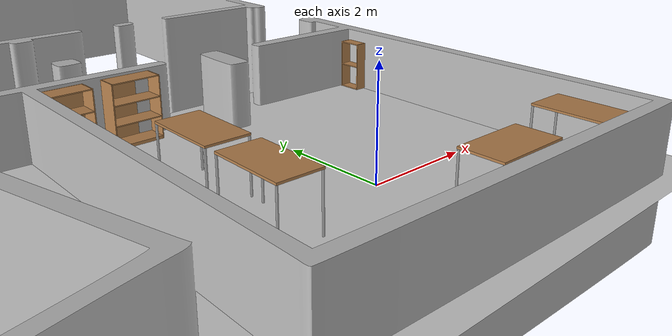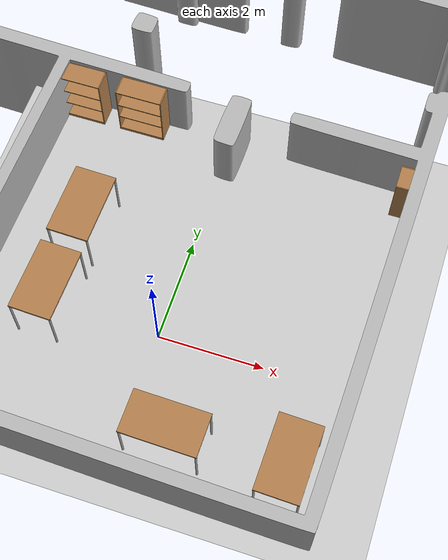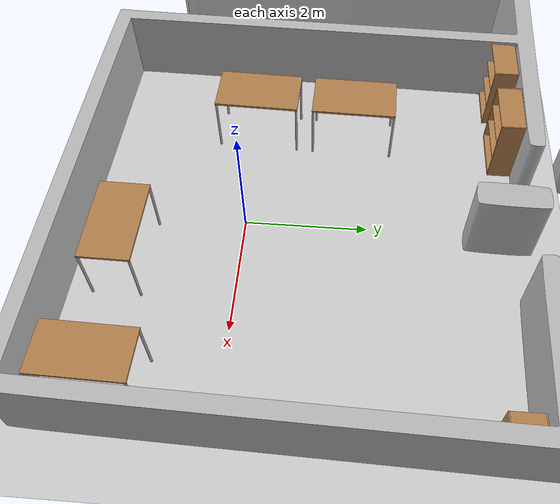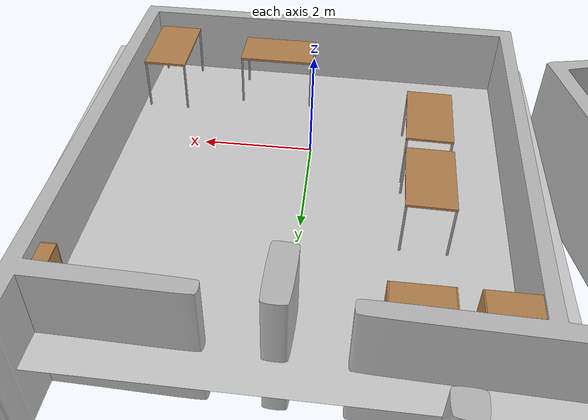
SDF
<sdf version="1.6">
 <world name="default">
  <light name="sun" type="directional">
   <pose>0 0 10 0 -0 0</pose>
   <diffuse>0.8 0.8 0.8 1</diffuse>
   <specular>0.1 0.1 0.1 1</specular>
   <attenuation>
    <range>1000</range>
    <constant>0.9</constant>
    <linear>0.01</linear>
    <quadratic>0.001</quadratic>
   </attenuation>
   <direction>-0.5 0.5 -1</direction>
  </light>
  <model name="ground_plane">
   <static>1</static>
   <link name="link">
    <collision name="collision">
     <geometry><plane><normal>0 0 1</normal><size>100 100</size></plane></geometry>
     <surface><friction><ode><mu>100</mu><mu2>50</mu2></ode></friction></surface>
    </collision>
    <visual name="visual">
     <cast_shadows>0</cast_shadows>
     <geometry><plane><normal>0 0 1</normal><size>100 100</size></plane></geometry>
     <material>
      <script><uri>file://media/materials/scripts/gazebo.material</uri><name>Gazebo/Grey</name></script>
     </material>
    </visual>
   </link>
  </model>
  <model name="brsu_ground_floor">
   <pose>-85 -30 0 0 -0 0</pose>
   <static>1</static>
   <link name="body">
    <visual name="visual">
     <geometry><mesh><uri>file://brsu_ground_floor.stl</uri><scale>1 1 1</scale></mesh></geometry>
    </visual>
    <collision name="collision">
     <geometry><mesh><uri>file://brsu_ground_floor.stl</uri><scale>1 1 1</scale></mesh></geometry>
    </collision>
   </link>
  </model>
  <gravity>0 0 -9.8</gravity>
  <magnetic_field>6e-06 2.3e-05 -4.2e-05</magnetic_field>
  <atmosphere type="adiabatic"/>
  <physics name="default_physics" default="0" type="ode">
   <max_step_size>0.001</max_step_size>
   <real_time_factor>1</real_time_factor>
   <real_time_update_rate>1000</real_time_update_rate>
  </physics>
  <scene><ambient>0.4 0.4 0.4 1</ambient><background>0.7 0.7 0.7 1</background><shadows>1</shadows></scene>
  <spherical_coordinates>
   <surface_model>EARTH_WGS84</surface_model>
   <latitude_deg>0</latitude_deg>
   <longitude_deg>0</longitude_deg>
   <elevation>0</elevation>
   <heading_deg>0</heading_deg>
  </spherical_coordinates>
  <model name="bookshelf">
   <static>1</static>
   <link name="link">
    <inertial><mass>1</mass></inertial>
    <collision name="back">
     <pose>0 0.005 0.6 0 -0 0</pose>
     <geometry><box><size>0.9 0.01 1.2</size></box></geometry>
    </collision>
    <visual name="visual1">
     <pose>0 0.005 0.6 0 -0 0</pose>
     <geometry><box><size>0.9 0.01 1.2</size></box></geometry>
     <material>
      <script><uri>file://media/materials/scripts/gazebo.material</uri><name>Gazebo/Wood</name></script>
     </material>
    </visual>
    <collision name="left_side">
     <pose>0.45 -0.195 0.6 0 -0 0</pose>
     <geometry><box><size>0.02 0.4 1.2</size></box></geometry>
    </collision>
    <visual name="visual2">
     <pose>0.45 -0.195 0.6 0 -0 0</pose>
     <geometry><box><size>0.02 0.4 1.2</size></box></geometry>
     <material>
      <script><uri>file://media/materials/scripts/gazebo.material</uri><name>Gazebo/Wood</name></script>
     </material>
    </visual>
    <collision name="right_side">
     <pose>-0.45 -0.195 0.6 0 -0 0</pose>
     <geometry><box><size>0.02 0.4 1.2</size></box></geometry>
    </collision>
    <visual name="visual3">
     <pose>-0.45 -0.195 0.6 0 -0 0</pose>
     <geometry><box><size>0.02 0.4 1.2</size></box></geometry>
     <material>
      <script><uri>file://media/materials/scripts/gazebo.material</uri><name>Gazebo/Wood</name></script>
     </material>
    </visual>
    <collision name="bottom">
     <pose>0 -0.195 0.03 0 -0 0</pose>
     <geometry><box><size>0.88 0.4 0.06</size></box></geometry>
    </collision>
    <visual name="visual4">
     <pose>0 -0.195 0.03 0 -0 0</pose>
     <geometry><box><size>0.88 0.4 0.06</size></box></geometry>
     <material>
      <script><uri>file://media/materials/scripts/gazebo.material</uri><name>Gazebo/Wood</name></script>
     </material>
    </visual>
    <collision name="top">
     <pose>0 -0.195 1.19 0 -0 0</pose>
     <geometry><box><size>0.88 0.4 0.02</size></box></geometry>
    </collision>
    <visual name="visual5">
     <pose>0 -0.195 1.19 0 -0 0</pose>
     <geometry><box><size>0.88 0.4 0.02</size></box></geometry>
     <material>
      <script><uri>file://media/materials/scripts/gazebo.material</uri><name>Gazebo/Wood</name></script>
     </material>
    </visual>
    <collision name="low_shelf">
     <pose>0 -0.195 0.43 0 -0 0</pose>
     <geometry><box><size>0.88 0.4 0.02</size></box></geometry>
    </collision>
    <visual name="visual6">
     <pose>0 -0.195 0.43 0 -0 0</pose>
     <geometry><box><size>0.88 0.4 0.02</size></box></geometry>
     <material>
      <script><uri>file://media/materials/scripts/gazebo.material</uri><name>Gazebo/Wood</name></script>
     </material>
    </visual>
    <collision name="high_shelf">
     <pose>0 -0.195 0.8 0 -0 0</pose>
     <geometry><box><size>0.88 0.4 0.02</size></box></geometry>
    </collision>
    <visual name="visual7">
     <pose>0 -0.195 0.8 0 -0 0</pose>
     <geometry><box><size>0.88 0.4 0.02</size></box></geometry>
     <material>
      <script><uri>file://media/materials/scripts/gazebo.material</uri><name>Gazebo/Wood</name></script>
     </material>
    </visual>
   </link>
   <pose>-3.04076 4.44791 0 0 -0 0</pose>
  </model>
  <model name="table">
   <static>0</static>
   <link name="link">
    <collision name="surface">
     <pose>0 0 1 0 -0 0</pose>
     <geometry><box><size>1.5 0.8 0.03</size></box></geometry>
     <surface><friction><ode><mu>0.6</mu><mu2>0.6</mu2></ode></friction></surface>
    </collision>
    <visual name="visual1">
     <pose>0 0 1 0 -0 0</pose>
     <geometry><box><size>1.4 0.8 0.04</size></box></geometry>
     <material>
      <script><uri>file://media/materials/scripts/gazebo.material</uri><name>Gazebo/Wood</name></script>
     </material>
    </visual>
    <collision name="front_left_leg">
     <pose>0.68 0.38 0.5 0 -0 0</pose>
     <geometry><cylinder><radius>0.02</radius><length>1</length></cylinder></geometry>
    </collision>
    <visual name="front_left_leg">
     <pose>0.68 0.38 0.5 0 -0 0</pose>
     <geometry><cylinder><radius>0.02</radius><length>1</length></cylinder></geometry>
     <material>
      <script><uri>file://media/materials/scripts/gazebo.material</uri><name>Gazebo/Grey</name></script>
     </material>
    </visual>
    <collision name="front_right_leg">
     <pose>0.68 -0.38 0.5 0 -0 0</pose>
     <geometry><cylinder><radius>0.02</radius><length>1</length></cylinder></geometry>
    </collision>
    <visual name="front_right_leg">
     <pose>0.68 -0.38 0.5 0 -0 0</pose>
     <geometry><cylinder><radius>0.02</radius><length>1</length></cylinder></geometry>
     <material>
      <script><uri>file://media/materials/scripts/gazebo.material</uri><name>Gazebo/Grey</name></script>
     </material>
    </visual>
    <collision name="back_right_leg">
     <pose>-0.68 -0.38 0.5 0 -0 0</pose>
     <geometry><cylinder><radius>0.02</radius><length>1</length></cylinder></geometry>
    </collision>
    <visual name="back_right_leg">
     <pose>-0.68 -0.38 0.5 0 -0 0</pose>
     <geometry><cylinder><radius>0.02</radius><length>1</length></cylinder></geometry>
     <material>
      <script><uri>file://media/materials/scripts/gazebo.material</uri><name>Gazebo/Grey</name></script>
     </material>
    </visual>
    <collision name="back_left_leg">
     <pose>-0.68 0.38 0.5 0 -0 0</pose>
     <geometry><cylinder><radius>0.02</radius><length>1</length></cylinder></geometry>
    </collision>
    <visual name="back_left_leg">
     <pose>-0.68 0.38 0.5 0 -0 0</pose>
     <geometry><cylinder><radius>0.02</radius><length>1</length></cylinder></geometry>
     <material>
      <script><uri>file://media/materials/scripts/gazebo.material</uri><name>Gazebo/Grey</name></script>
     </material>
    </visual>
    <inertial>
     <inertia><ixx>1</ixx><ixy>0</ixy><ixz>0</ixz><iyy>1</iyy><iyz>0</iyz><izz>1</izz></inertia>
     <mass>1</mass>
    </inertial>
   </link>
   <pose>0.811621 -1.80686 -9e-06 -0 -1e-06 -0.015834</pose>
  </model>
  <model name="table_0">
   <static>0</static>
   <link name="link">
    <collision name="surface">
     <pose>0 0 1 0 -0 0</pose>
     <geometry><box><size>1.5 0.8 0.03</size></box></geometry>
     <surface><friction><ode><mu>0.6</mu><mu2>0.6</mu2></ode></friction></surface>
    </collision>
    <visual name="visual1">
     <pose>0 0 1 0 -0 0</pose>
     <geometry><box><size>1.4 0.8 0.04</size></box></geometry>
     <material>
      <script><uri>file://media/materials/scripts/gazebo.material</uri><name>Gazebo/Wood</name></script>
     </material>
    </visual>
    <collision name="front_left_leg">
     <pose>0.68 0.38 0.5 0 -0 0</pose>
     <geometry><cylinder><radius>0.02</radius><length>1</length></cylinder></geometry>
    </collision>
    <visual name="front_left_leg">
     <pose>0.68 0.38 0.5 0 -0 0</pose>
     <geometry><cylinder><radius>0.02</radius><length>1</length></cylinder></geometry>
     <material>
      <script><uri>file://media/materials/scripts/gazebo.material</uri><name>Gazebo/Grey</name></script>
     </material>
    </visual>
    <collision name="front_right_leg">
     <pose>0.68 -0.38 0.5 0 -0 0</pose>
     <geometry><cylinder><radius>0.02</radius><length>1</length></cylinder></geometry>
    </collision>
    <visual name="front_right_leg">
     <pose>0.68 -0.38 0.5 0 -0 0</pose>
     <geometry><cylinder><radius>0.02</radius><length>1</length></cylinder></geometry>
     <material>
      <script><uri>file://media/materials/scripts/gazebo.material</uri><name>Gazebo/Grey</name></script>
     </material>
    </visual>
    <collision name="back_right_leg">
     <pose>-0.68 -0.38 0.5 0 -0 0</pose>
     <geometry><cylinder><radius>0.02</radius><length>1</length></cylinder></geometry>
    </collision>
    <visual name="back_right_leg">
     <pose>-0.68 -0.38 0.5 0 -0 0</pose>
     <geometry><cylinder><radius>0.02</radius><length>1</length></cylinder></geometry>
     <material>
      <script><uri>file://media/materials/scripts/gazebo.material</uri><name>Gazebo/Grey</name></script>
     </material>
    </visual>
    <collision name="back_left_leg">
     <pose>-0.68 0.38 0.5 0 -0 0</pose>
     <geometry><cylinder><radius>0.02</radius><length>1</length></cylinder></geometry>
    </collision>
    <visual name="back_left_leg">
     <pose>-0.68 0.38 0.5 0 -0 0</pose>
     <geometry><cylinder><radius>0.02</radius><length>1</length></cylinder></geometry>
     <material>
      <script><uri>file://media/materials/scripts/gazebo.material</uri><name>Gazebo/Grey</name></script>
     </material>
    </visual>
    <inertial>
     <inertia><ixx>1</ixx><ixy>0</ixy><ixz>0</ixz><iyy>1</iyy><iyz>0</iyz><izz>1</izz></inertia>
     <mass>1</mass>
    </inertial>
   </link>
   <pose>2.94137 -1.74418 -8e-06 0 0 -1.59473</pose>
  </model>
  <model name="bookshelf_0">
   <static>1</static>
   <link name="link">
    <inertial><mass>1</mass></inertial>
    <collision name="back">
     <pose>0 0.005 0.6 0 -0 0</pose>
     <geometry><box><size>0.9 0.01 1.2</size></box></geometry>
    </collision>
    <visual name="visual1">
     <pose>0 0.005 0.6 0 -0 0</pose>
     <geometry><box><size>0.9 0.01 1.2</size></box></geometry>
     <material>
      <script><uri>file://media/materials/scripts/gazebo.material</uri><name>Gazebo/Wood</name></script>
     </material>
    </visual>
    <collision name="left_side">
     <pose>0.45 -0.195 0.6 0 -0 0</pose>
     <geometry><box><size>0.02 0.4 1.2</size></box></geometry>
    </collision>
    <visual name="visual2">
     <pose>0.45 -0.195 0.6 0 -0 0</pose>
     <geometry><box><size>0.02 0.4 1.2</size></box></geometry>
     <material>
      <script><uri>file://media/materials/scripts/gazebo.material</uri><name>Gazebo/Wood</name></script>
     </material>
    </visual>
    <collision name="right_side">
     <pose>-0.45 -0.195 0.6 0 -0 0</pose>
     <geometry><box><size>0.02 0.4 1.2</size></box></geometry>
    </collision>
    <visual name="visual3">
     <pose>-0.45 -0.195 0.6 0 -0 0</pose>
     <geometry><box><size>0.02 0.4 1.2</size></box></geometry>
     <material>
      <script><uri>file://media/materials/scripts/gazebo.material</uri><name>Gazebo/Wood</name></script>
     </material>
    </visual>
    <collision name="bottom">
     <pose>0 -0.195 0.03 0 -0 0</pose>
     <geometry><box><size>0.88 0.4 0.06</size></box></geometry>
    </collision>
    <visual name="visual4">
     <pose>0 -0.195 0.03 0 -0 0</pose>
     <geometry><box><size>0.88 0.4 0.06</size></box></geometry>
     <material>
      <script><uri>file://media/materials/scripts/gazebo.material</uri><name>Gazebo/Wood</name></script>
     </material>
    </visual>
    <collision name="top">
     <pose>0 -0.195 1.19 0 -0 0</pose>
     <geometry><box><size>0.88 0.4 0.02</size></box></geometry>
    </collision>
    <visual name="visual5">
     <pose>0 -0.195 1.19 0 -0 0</pose>
     <geometry><box><size>0.88 0.4 0.02</size></box></geometry>
     <material>
      <script><uri>file://media/materials/scripts/gazebo.material</uri><name>Gazebo/Wood</name></script>
     </material>
    </visual>
    <collision name="low_shelf">
     <pose>0 -0.195 0.43 0 -0 0</pose>
     <geometry><box><size>0.88 0.4 0.02</size></box></geometry>
    </collision>
    <visual name="visual6">
     <pose>0 -0.195 0.43 0 -0 0</pose>
     <geometry><box><size>0.88 0.4 0.02</size></box></geometry>
     <material>
      <script><uri>file://media/materials/scripts/gazebo.material</uri><name>Gazebo/Wood</name></script>
     </material>
    </visual>
    <collision name="high_shelf">
     <pose>0 -0.195 0.8 0 -0 0</pose>
     <geometry><box><size>0.88 0.4 0.02</size></box></geometry>
    </collision>
    <visual name="visual7">
     <pose>0 -0.195 0.8 0 -0 0</pose>
     <geometry><box><size>0.88 0.4 0.02</size></box></geometry>
     <material>
      <script><uri>file://media/materials/scripts/gazebo.material</uri><name>Gazebo/Wood</name></script>
     </material>
    </visual>
   </link>
   <pose>-1.79311 4.45555 0 0 -0 0</pose>
  </model>
  <model name="cabinet">
   <static>1</static>
   <link name="cabinet_bottom_plate">
    <inertial>
     <pose>0 0 -1 0 -0 0</pose>
     <inertia><ixx>2.05</ixx><ixy>0</ixy><ixz>0</ixz><iyy>2.05</iyy><iyz>0</iyz><izz>2.05</izz></inertia>
     <mass>25</mass>
    </inertial>
    <collision name="cabinet_bottom_plate_geom">
     <pose>0 0 0.01 0 -0 0</pose>
     <geometry><box><size>0.45 0.45 0.02</size></box></geometry>
    </collision>
    <visual name="cabinet_bottom_plate_geom_visual">
     <pose>0 0 0.01 0 -0 0</pose>
     <geometry><box><size>0.45 0.45 0.02</size></box></geometry>
     <material>
      <script><uri>file://media/materials/scripts/gazebo.material</uri><name>Gazebo/Wood</name></script>
     </material>
    </visual>
    <collision name="cabinet_bottom_plate_geom_cabinet_back_plate">
     <pose>0.235 0 0.51 0 -0 0</pose>
     <geometry><box><size>0.02 0.45 1.02</size></box></geometry>
    </collision>
    <visual name="cabinet_bottom_plate_geom_cabinet_back_plate_visual">
     <pose>0.235 0 0.51 0 -0 0</pose>
     <geometry><box><size>0.02 0.45 1.02</size></box></geometry>
     <material>
      <script><uri>file://media/materials/scripts/gazebo.material</uri><name>Gazebo/Wood</name></script>
     </material>
    </visual>
    <collision name="cabinet_bottom_plate_geom_cabinet_left_plate">
     <pose>0 0.235 0.51 0 -0 0</pose>
     <geometry><box><size>0.45 0.02 1.02</size></box></geometry>
    </collision>
    <visual name="cabinet_bottom_plate_geom_cabinet_left_plate_visual">
     <pose>0 0.235 0.51 0 -0 0</pose>
     <geometry><box><size>0.45 0.02 1.02</size></box></geometry>
     <material>
      <script><uri>file://media/materials/scripts/gazebo.material</uri><name>Gazebo/Wood</name></script>
     </material>
    </visual>
    <collision name="cabinet_bottom_plate_geom_cabinet_middle_plate">
     <pose>0 0 0.51 0 -0 0</pose>
     <geometry><box><size>0.45 0.45 0.02</size></box></geometry>
    </collision>
    <visual name="cabinet_bottom_plate_geom_cabinet_middle_plate_visual">
     <pose>0 0 0.51 0 -0 0</pose>
     <geometry><box><size>0.45 0.45 0.02</size></box></geometry>
     <material>
      <script><uri>file://media/materials/scripts/gazebo.material</uri><name>Gazebo/Wood</name></script>
     </material>
    </visual>
    <collision name="cabinet_bottom_plate_geom_cabinet_right_plate">
     <pose>0 -0.235 0.51 0 -0 0</pose>
     <geometry><box><size>0.45 0.02 1.02</size></box></geometry>
    </collision>
    <visual name="cabinet_bottom_plate_geom_cabinet_right_plate_visual">
     <pose>0 -0.235 0.51 0 -0 0</pose>
     <geometry><box><size>0.45 0.02 1.02</size></box></geometry>
     <material>
      <script><uri>file://media/materials/scripts/gazebo.material</uri><name>Gazebo/Wood</name></script>
     </material>
    </visual>
    <collision name="cabinet_bottom_plate_geom_cabinet_top_plate">
     <pose>0 0 1.01 0 -0 0</pose>
     <geometry><box><size>0.45 0.45 0.02</size></box></geometry>
    </collision>
    <visual name="cabinet_bottom_plate_geom_cabinet_top_plate_visual">
     <pose>0 0 1.01 0 -0 0</pose>
     <geometry><box><size>0.45 0.45 0.02</size></box></geometry>
     <material>
      <script><uri>file://media/materials/scripts/gazebo.material</uri><name>Gazebo/Wood</name></script>
     </material>
    </visual>
   </link>
   <pose>3.58417 4.03156 0 0 -0 0</pose>
  </model>
  <model name="table_clone">
   <static>0</static>
   <link name="link">
    <collision name="surface">
     <pose>0 0 1 0 -0 0</pose>
     <geometry><box><size>1.5 0.8 0.03</size></box></geometry>
     <surface><friction><ode><mu>0.6</mu><mu2>0.6</mu2></ode></friction></surface>
    </collision>
    <visual name="visual1">
     <pose>0 0 1 0 -0 0</pose>
     <geometry><box><size>1.4 0.8 0.04</size></box></geometry>
     <material>
      <script><uri>file://media/materials/scripts/gazebo.material</uri><name>Gazebo/Wood</name></script>
     </material>
    </visual>
    <collision name="front_left_leg">
     <pose>0.68 0.38 0.5 0 -0 0</pose>
     <geometry><cylinder><radius>0.02</radius><length>1</length></cylinder></geometry>
    </collision>
    <visual name="front_left_leg">
     <pose>0.68 0.38 0.5 0 -0 0</pose>
     <geometry><cylinder><radius>0.02</radius><length>1</length></cylinder></geometry>
     <material>
      <script><uri>file://media/materials/scripts/gazebo.material</uri><name>Gazebo/Grey</name></script>
     </material>
    </visual>
    <collision name="front_right_leg">
     <pose>0.68 -0.38 0.5 0 -0 0</pose>
     <geometry><cylinder><radius>0.02</radius><length>1</length></cylinder></geometry>
    </collision>
    <visual name="front_right_leg">
     <pose>0.68 -0.38 0.5 0 -0 0</pose>
     <geometry><cylinder><radius>0.02</radius><length>1</length></cylinder></geometry>
     <material>
      <script><uri>file://media/materials/scripts/gazebo.material</uri><name>Gazebo/Grey</name></script>
     </material>
    </visual>
    <collision name="back_right_leg">
     <pose>-0.68 -0.38 0.5 0 -0 0</pose>
     <geometry><cylinder><radius>0.02</radius><length>1</length></cylinder></geometry>
    </collision>
    <visual name="back_right_leg">
     <pose>-0.68 -0.38 0.5 0 -0 0</pose>
     <geometry><cylinder><radius>0.02</radius><length>1</length></cylinder></geometry>
     <material>
      <script><uri>file://media/materials/scripts/gazebo.material</uri><name>Gazebo/Grey</name></script>
     </material>
    </visual>
    <collision name="back_left_leg">
     <pose>-0.68 0.38 0.5 0 -0 0</pose>
     <geometry><cylinder><radius>0.02</radius><length>1</length></cylinder></geometry>
    </collision>
    <visual name="back_left_leg">
     <pose>-0.68 0.38 0.5 0 -0 0</pose>
     <geometry><cylinder><radius>0.02</radius><length>1</length></cylinder></geometry>
     <material>
      <script><uri>file://media/materials/scripts/gazebo.material</uri><name>Gazebo/Grey</name></script>
     </material>
    </visual>
    <inertial>
     <inertia><ixx>1</ixx><ixy>0</ixy><ixz>0</ixz><iyy>1</iyy><iyz>0</iyz><izz>1</izz></inertia>
     <mass>1</mass>
    </inertial>
   </link>
   <pose>-2.07465 0.039389 -3e-06 -1e-06 4e-06 -1.60163</pose>
  </model>
  <model name="table_clone_clone">
   <static>0</static>
   <link name="link">
    <collision name="surface">
     <pose>0 0 1 0 -0 0</pose>
     <geometry><box><size>1.5 0.8 0.03</size></box></geometry>
     <surface><friction><ode><mu>0.6</mu><mu2>0.6</mu2></ode></friction></surface>
    </collision>
    <visual name="visual1">
     <pose>0 0 1 0 -0 0</pose>
     <geometry><box><size>1.4 0.8 0.04</size></box></geometry>
     <material>
      <script><uri>file://media/materials/scripts/gazebo.material</uri><name>Gazebo/Wood</name></script>
     </material>
    </visual>
    <collision name="front_left_leg">
     <pose>0.68 0.38 0.5 0 -0 0</pose>
     <geometry><cylinder><radius>0.02</radius><length>1</length></cylinder></geometry>
    </collision>
    <visual name="front_left_leg">
     <pose>0.68 0.38 0.5 0 -0 0</pose>
     <geometry><cylinder><radius>0.02</radius><length>1</length></cylinder></geometry>
     <material>
      <script><uri>file://media/materials/scripts/gazebo.material</uri><name>Gazebo/Grey</name></script>
     </material>
    </visual>
    <collision name="front_right_leg">
     <pose>0.68 -0.38 0.5 0 -0 0</pose>
     <geometry><cylinder><radius>0.02</radius><length>1</length></cylinder></geometry>
    </collision>
    <visual name="front_right_leg">
     <pose>0.68 -0.38 0.5 0 -0 0</pose>
     <geometry><cylinder><radius>0.02</radius><length>1</length></cylinder></geometry>
     <material>
      <script><uri>file://media/materials/scripts/gazebo.material</uri><name>Gazebo/Grey</name></script>
     </material>
    </visual>
    <collision name="back_right_leg">
     <pose>-0.68 -0.38 0.5 0 -0 0</pose>
     <geometry><cylinder><radius>0.02</radius><length>1</length></cylinder></geometry>
    </collision>
    <visual name="back_right_leg">
     <pose>-0.68 -0.38 0.5 0 -0 0</pose>
     <geometry><cylinder><radius>0.02</radius><length>1</length></cylinder></geometry>
     <material>
      <script><uri>file://media/materials/scripts/gazebo.material</uri><name>Gazebo/Grey</name></script>
     </material>
    </visual>
    <collision name="back_left_leg">
     <pose>-0.68 0.38 0.5 0 -0 0</pose>
     <geometry><cylinder><radius>0.02</radius><length>1</length></cylinder></geometry>
    </collision>
    <visual name="back_left_leg">
     <pose>-0.68 0.38 0.5 0 -0 0</pose>
     <geometry><cylinder><radius>0.02</radius><length>1</length></cylinder></geometry>
     <material>
      <script><uri>file://media/materials/scripts/gazebo.material</uri><name>Gazebo/Grey</name></script>
     </material>
    </visual>
    <inertial>
     <inertia><ixx>1</ixx><ixy>0</ixy><ixz>0</ixz><iyy>1</iyy><iyz>0</iyz><izz>1</izz></inertia>
     <mass>1</mass>
    </inertial>
   </link>
   <pose>-2.03078 1.68384 -1e-06 0 0 -1.59305</pose>
  </model>
 </world>
</sdf>
